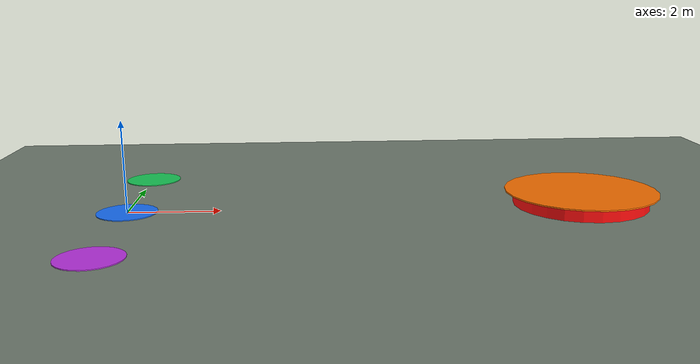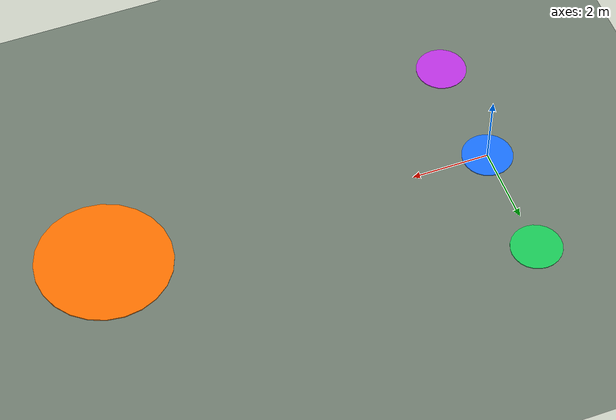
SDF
<?xml version="1.0"?>
<sdf version="1.9">
  <world name="default">
    <physics name="default_physics" type="ignored">
      <max_step_size>0.004</max_step_size>
      <real_time_factor>1.0</real_time_factor>
    </physics>

    <plugin
      filename="gz-sim-physics-system"
      name="gz::sim::systems::Physics"/>
    <plugin
      filename="gz-sim-user-commands-system"
      name="gz::sim::systems::UserCommands"/>
    <plugin
      filename="gz-sim-scene-broadcaster-system"
      name="gz::sim::systems::SceneBroadcaster"/>

    <light type="directional" name="sun">
      <pose>0 0 10 0 0 0</pose>
      <diffuse>0.85 0.85 0.85 1</diffuse>
      <specular>0.2 0.2 0.2 1</specular>
      <direction>-0.5 0.1 -0.9</direction>
    </light>

    <model name="ground_plane">
      <static>true</static>
      <link name="link">
        <collision name="collision">
          <geometry>
            <plane>
              <normal>0 0 1</normal>
              <size>100 100</size>
            </plane>
          </geometry>
        </collision>
        <visual name="visual">
          <geometry>
            <plane>
              <normal>0 0 1</normal>
              <size>100 100</size>
            </plane>
          </geometry>
          <material>
            <ambient>0.35 0.40 0.35 1</ambient>
            <diffuse>0.45 0.50 0.45 1</diffuse>
          </material>
        </visual>
      </link>
    </model>

    <!-- Component-level world target. The integrated launcher spawns the
         matching reusable model at TARGET_X/TARGET_Y, default (10, 0). -->
    <model name="confirmed_target">
      <static>true</static>
      <pose>10 0 0 0 0 0</pose>
      <link name="target_link">
        <collision name="target_collision">
          <pose>0 0 0.15 0 0 0</pose>
          <geometry>
            <cylinder>
              <radius>1.50</radius>
              <length>0.30</length>
            </cylinder>
          </geometry>
        </collision>
        <visual name="target_visual">
          <pose>0 0 0.15 0 0 0</pose>
          <geometry>
            <cylinder>
              <radius>1.50</radius>
              <length>0.30</length>
            </cylinder>
          </geometry>
          <material>
            <ambient>1 0.05 0.05 1</ambient>
            <diffuse>1 0.05 0.05 1</diffuse>
            <emissive>0.35 0 0 1</emissive>
          </material>
        </visual>
        <visual name="target_outer_ring">
          <pose>0 0 0.31 0 0 0</pose>
          <geometry>
            <cylinder>
              <radius>1.70</radius>
              <length>0.03</length>
            </cylinder>
          </geometry>
          <material>
            <ambient>1 0.45 0 1</ambient>
            <diffuse>1 0.45 0 1</diffuse>
            <emissive>0.40 0.15 0 1</emissive>
          </material>
        </visual>
      </link>
    </model>

    <!-- Visual launch references for the three PX4 spawn locations. -->
    <model name="launch_reference">
      <static>true</static>
      <link name="pads">
        <visual name="scout_pad">
          <pose>0 0 0.01 0 0 0</pose>
          <geometry><cylinder><radius>0.65</radius><length>0.02</length></cylinder></geometry>
          <material><ambient>0.1 0.45 1 1</ambient><diffuse>0.1 0.45 1 1</diffuse></material>
        </visual>
        <visual name="worker_pad">
          <pose>0 3 0.01 0 0 0</pose>
          <geometry><cylinder><radius>0.65</radius><length>0.02</length></cylinder></geometry>
          <material><ambient>0.1 0.8 0.35 1</ambient><diffuse>0.1 0.8 0.35 1</diffuse></material>
        </visual>
        <visual name="relay_pad">
          <pose>0 -3 0.01 0 0 0</pose>
          <geometry><cylinder><radius>0.65</radius><length>0.02</length></cylinder></geometry>
          <material><ambient>0.75 0.2 0.9 1</ambient><diffuse>0.75 0.2 0.9 1</diffuse></material>
        </visual>
      </link>
    </model>
  </world>
</sdf>
